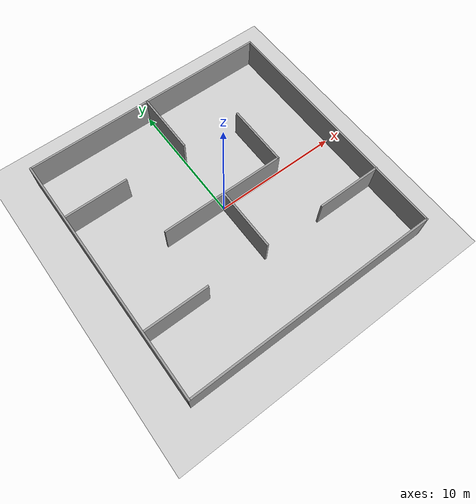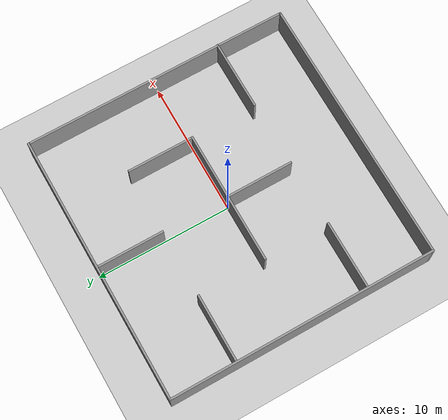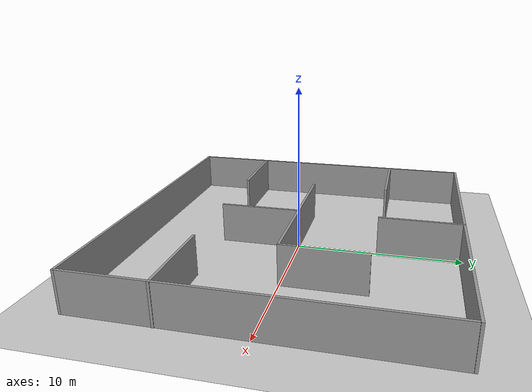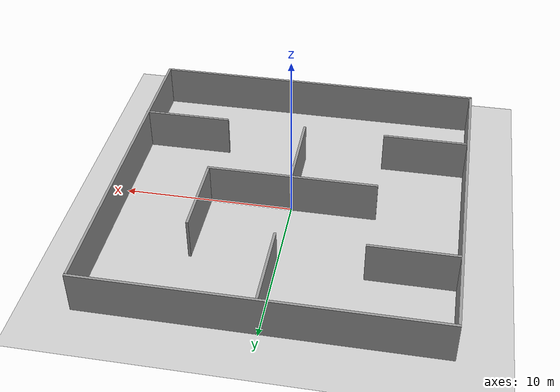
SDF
<sdf version="1.6">
 <world name="default">
  <light name="sun" type="directional">
   <pose>0 0 10 0 -0 0</pose>
   <diffuse>0.8 0.8 0.8 1</diffuse>
   <specular>0.1 0.1 0.1 1</specular>
   <attenuation>
    <range>1000</range>
    <constant>0.9</constant>
    <linear>0.01</linear>
    <quadratic>0.001</quadratic>
   </attenuation>
   <direction>-0.5 0.5 -1</direction>
  </light>
  <model name="ground_plane">
   <static>1</static>
   <link name="link">
    <collision name="collision">
     <geometry><plane><normal>0 0 1</normal><size>100 100</size></plane></geometry>
     <surface><friction><ode><mu>100</mu><mu2>50</mu2></ode></friction></surface>
    </collision>
    <visual name="visual">
     <cast_shadows>0</cast_shadows>
     <geometry><plane><normal>0 0 1</normal><size>100 100</size></plane></geometry>
     <material>
      <script><uri>file://media/materials/scripts/gazebo.material</uri><name>Gazebo/Grey</name></script>
     </material>
    </visual>
   </link>
  </model>
  <gravity>0 0 -9.8</gravity>
  <magnetic_field>6e-06 2.3e-05 -4.2e-05</magnetic_field>
  <atmosphere type="adiabatic"/>
  <physics name="default_physics" default="0" type="ode">
   <max_step_size>0.001</max_step_size>
   <real_time_factor>1</real_time_factor>
   <real_time_update_rate>1000</real_time_update_rate>
  </physics>
  <scene><ambient>0.4 0.4 0.4 1</ambient><background>0.7 0.7 0.7 1</background><shadows>0</shadows></scene>
  <spherical_coordinates>
   <surface_model>EARTH_WGS84</surface_model>
   <latitude_deg>0</latitude_deg>
   <longitude_deg>0</longitude_deg>
   <elevation>0</elevation>
   <heading_deg>0</heading_deg>
  </spherical_coordinates>
  <model name="maze-1">
   <pose>0.037505 -0.028848 0 0 -0 0</pose>
   <link name="Wall_14">
    <collision name="Wall_14_Collision">
     <geometry><box><size>19.7163 0.15 2.5</size></box></geometry>
     <pose>0 0 1.25 0 -0 0</pose>
    </collision>
    <visual name="Wall_14_Visual">
     <pose>0 0 1.25 0 -0 0</pose>
     <geometry><box><size>19.7163 0.15 2.5</size></box></geometry>
     <material>
      <script><uri>file://media/materials/scripts/gazebo.material</uri><name>Gazebo/Grey</name></script>
      <ambient>1 1 1 1</ambient>
     </material>
    </visual>
    <pose>9.9125 -0.080422 0 0 0 -1.5708</pose>
   </link>
   <link name="Wall_19">
    <collision name="Wall_19_Collision">
     <geometry><box><size>20 0.15 2.5</size></box></geometry>
     <pose>0 0 1.25 0 -0 0</pose>
    </collision>
    <visual name="Wall_19_Visual">
     <pose>0 0 1.25 0 -0 0</pose>
     <geometry><box><size>20 0.15 2.5</size></box></geometry>
     <material>
      <script><uri>file://media/materials/scripts/gazebo.material</uri><name>Gazebo/Grey</name></script>
      <ambient>1 1 1 1</ambient>
     </material>
    </visual>
    <pose>-0.012499 -9.86342 0 0 -0 3.14159</pose>
   </link>
   <link name="Wall_20">
    <collision name="Wall_20_Collision">
     <geometry><box><size>19.8766 0.15 2.5</size></box></geometry>
     <pose>0 0 1.25 0 -0 0</pose>
    </collision>
    <visual name="Wall_20_Visual">
     <pose>0 0 1.25 0 -0 0</pose>
     <geometry><box><size>19.8766 0.15 2.5</size></box></geometry>
     <material>
      <script><uri>file://media/materials/scripts/gazebo.material</uri><name>Gazebo/Grey</name></script>
      <ambient>1 1 1 1</ambient>
     </material>
    </visual>
    <pose>-9.9375 7.8e-05 0 0 -0 1.5708</pose>
   </link>
   <link name="Wall_21">
    <collision name="Wall_21_Collision">
     <geometry><box><size>20 0.15 2.5</size></box></geometry>
     <pose>0 0 1.25 0 -0 0</pose>
    </collision>
    <visual name="Wall_21_Visual">
     <pose>0 0 1.25 0 -0 0</pose>
     <geometry><box><size>20 0.15 2.5</size></box></geometry>
     <material>
      <script><uri>file://media/materials/scripts/gazebo.material</uri><name>Gazebo/Grey</name></script>
      <ambient>1 1 1 1</ambient>
     </material>
    </visual>
    <pose>-0.012499 9.86358 0 0 -0 0</pose>
   </link>
   <link name="Wall_28">
    <collision name="Wall_28_Collision">
     <geometry><box><size>5 0.15 2.5</size></box></geometry>
     <pose>0 0 1.25 0 -0 0</pose>
    </collision>
    <visual name="Wall_28_Visual">
     <pose>0 0 1.25 0 -0 0</pose>
     <geometry><box><size>5 0.15 2.5</size></box></geometry>
     <material>
      <script><uri>file://media/materials/scripts/gazebo.material</uri><name>Gazebo/Grey</name></script>
      <ambient>1 1 1 1</ambient>
     </material>
    </visual>
    <pose>-0.012499 -2.41142 0 0 0 -1.5708</pose>
   </link>
   <link name="Wall_45">
    <collision name="Wall_45_Collision">
     <geometry><box><size>5 0.15 2.5</size></box></geometry>
     <pose>0 0 1.25 0 -0 0</pose>
    </collision>
    <visual name="Wall_45_Visual">
     <pose>0 0 1.25 0 -0 0</pose>
     <geometry><box><size>5 0.15 2.5</size></box></geometry>
     <material>
      <script><uri>file://media/materials/scripts/gazebo.material</uri><name>Gazebo/Grey</name></script>
      <ambient>1 1 1 1</ambient>
     </material>
    </visual>
    <pose>2.4125 0.013578 0 0 -0 0</pose>
   </link>
   <link name="Wall_46">
    <collision name="Wall_46_Collision">
     <geometry><box><size>5 0.15 2.5</size></box></geometry>
     <pose>0 0 1.25 0 -0 0</pose>
    </collision>
    <visual name="Wall_46_Visual">
     <pose>0 0 1.25 0 -0 0</pose>
     <geometry><box><size>5 0.15 2.5</size></box></geometry>
     <material>
      <script><uri>file://media/materials/scripts/gazebo.material</uri><name>Gazebo/Grey</name></script>
      <ambient>1 1 1 1</ambient>
     </material>
    </visual>
    <pose>4.8375 2.43858 0 0 -0 1.5708</pose>
   </link>
   <link name="Wall_61">
    <collision name="Wall_61_Collision">
     <geometry><box><size>5 0.15 2.5</size></box></geometry>
     <pose>0 0 1.25 0 -0 0</pose>
    </collision>
    <visual name="Wall_61_Visual">
     <pose>0 0 1.25 0 -0 0</pose>
     <geometry><box><size>5 0.15 2.5</size></box></geometry>
     <material>
      <script><uri>file://media/materials/scripts/gazebo.material</uri><name>Gazebo/Grey</name></script>
      <ambient>1 1 1 1</ambient>
     </material>
    </visual>
    <pose>-7.3875 5.01358 0 0 -0 0</pose>
   </link>
   <link name="Wall_63">
    <collision name="Wall_63_Collision">
     <geometry><box><size>5 0.15 2.5</size></box></geometry>
     <pose>0 0 1.25 0 -0 0</pose>
    </collision>
    <visual name="Wall_63_Visual">
     <pose>0 0 1.25 0 -0 0</pose>
     <geometry><box><size>5 0.15 2.5</size></box></geometry>
     <material>
      <script><uri>file://media/materials/scripts/gazebo.material</uri><name>Gazebo/Grey</name></script>
      <ambient>1 1 1 1</ambient>
     </material>
    </visual>
    <pose>0.001151 7.40536 0 0 -0 1.5708</pose>
   </link>
   <link name="Wall_66">
    <collision name="Wall_66_Collision">
     <geometry><box><size>5.25 0.15 2.5</size></box></geometry>
     <pose>0 0 1.25 0 -0 0</pose>
    </collision>
    <visual name="Wall_66_Visual">
     <pose>0 0 1.25 0 -0 0</pose>
     <geometry><box><size>5.25 0.15 2.5</size></box></geometry>
     <material>
      <script><uri>file://media/materials/scripts/gazebo.material</uri><name>Gazebo/Grey</name></script>
      <ambient>1 1 1 1</ambient>
     </material>
    </visual>
    <pose>7.3875 -4.83642 0 0 -0 0</pose>
   </link>
   <link name="Wall_68">
    <collision name="Wall_68_Collision">
     <geometry><box><size>5.075 0.15 2.5</size></box></geometry>
     <pose>0 0 1.25 0 -0 0</pose>
    </collision>
    <visual name="Wall_68_Visual">
     <pose>0 0 1.25 0 -0 0</pose>
     <geometry><box><size>5.075 0.15 2.5</size></box></geometry>
     <material>
      <script><uri>file://media/materials/scripts/gazebo.material</uri><name>Gazebo/Grey</name></script>
      <ambient>1 1 1 1</ambient>
     </material>
    </visual>
    <pose>-2.475 0.013578 0 0 -0 3.14159</pose>
   </link>
   <link name="Wall_71">
    <collision name="Wall_71_Collision">
     <geometry><box><size>5 0.15 2.5</size></box></geometry>
     <pose>0 0 1.25 0 -0 0</pose>
    </collision>
    <visual name="Wall_71_Visual">
     <pose>0 0 1.25 0 -0 0</pose>
     <geometry><box><size>5 0.15 2.5</size></box></geometry>
     <material>
      <script><uri>file://media/materials/scripts/gazebo.material</uri><name>Gazebo/Grey</name></script>
      <ambient>1 1 1 1</ambient>
     </material>
    </visual>
    <pose>-7.3625 -4.83642 0 0 -0 3.14159</pose>
   </link>
   <static>1</static>
  </model>
 </world>
</sdf>
